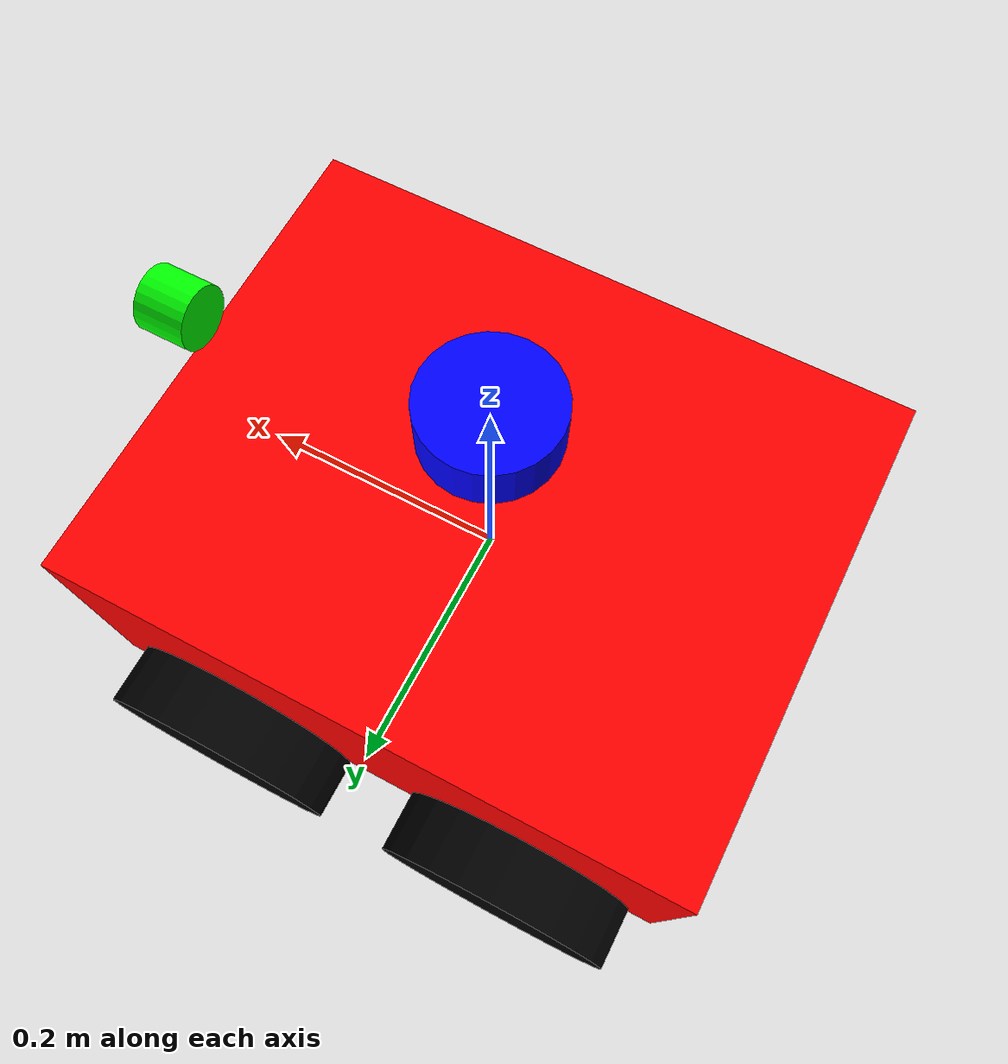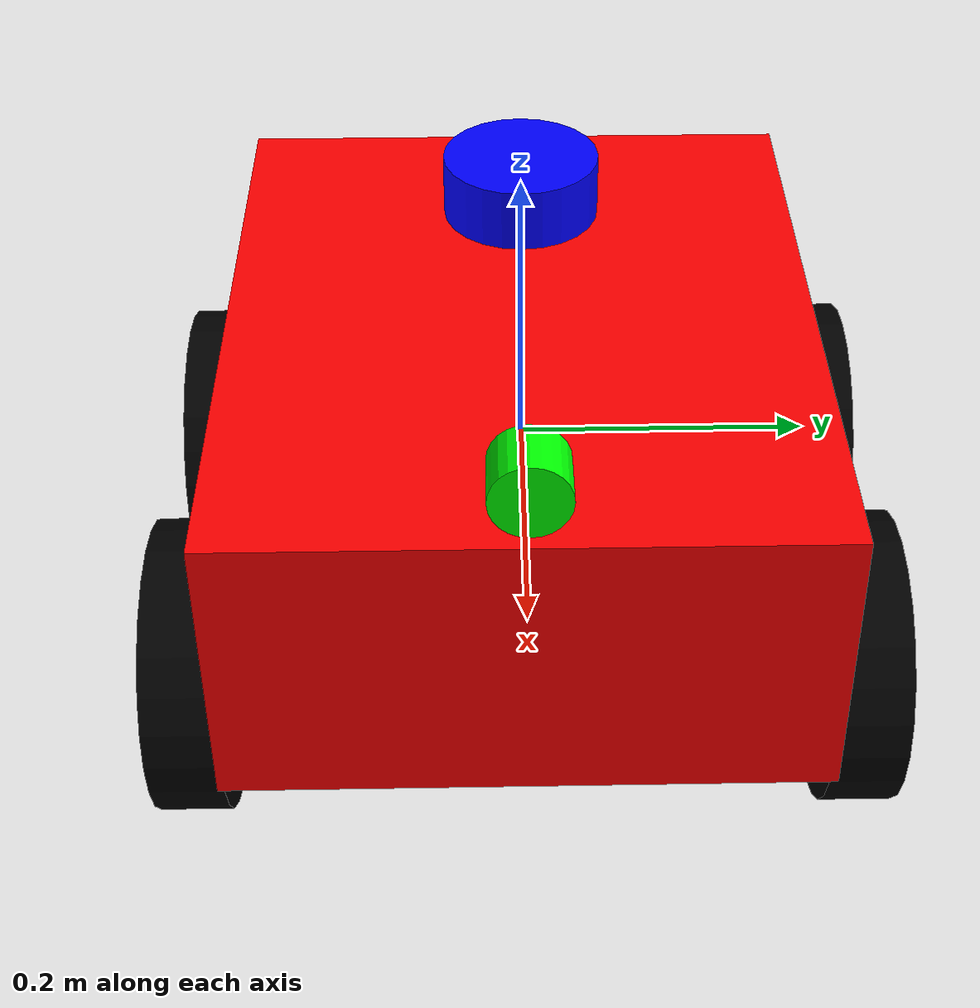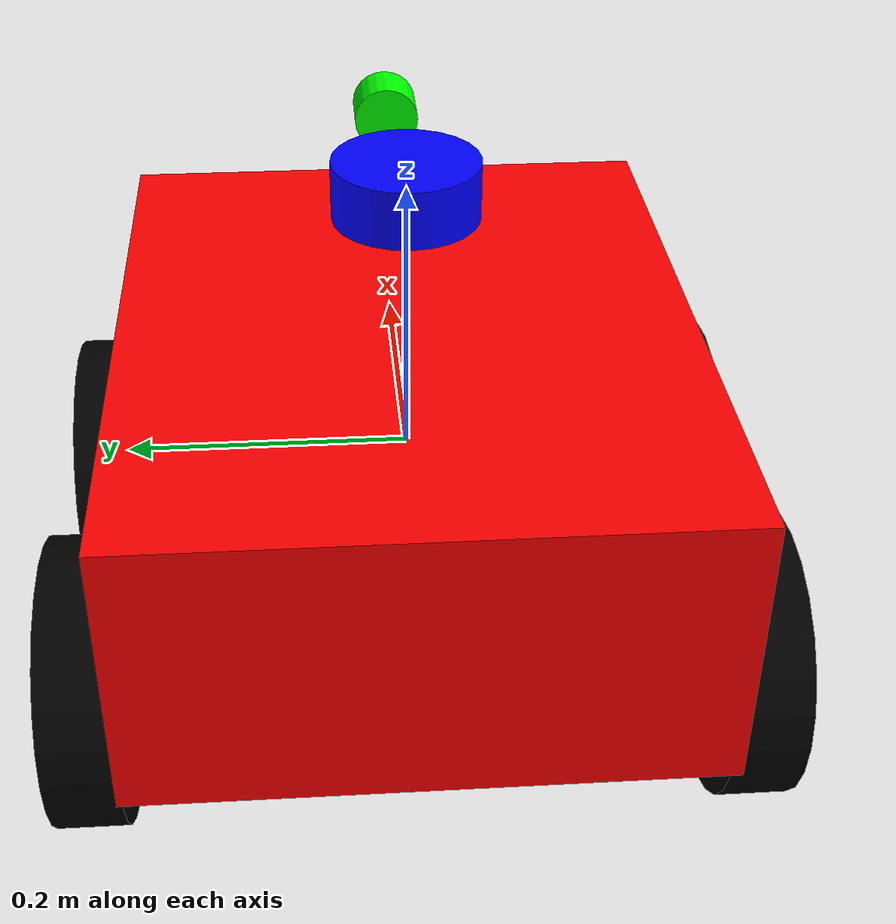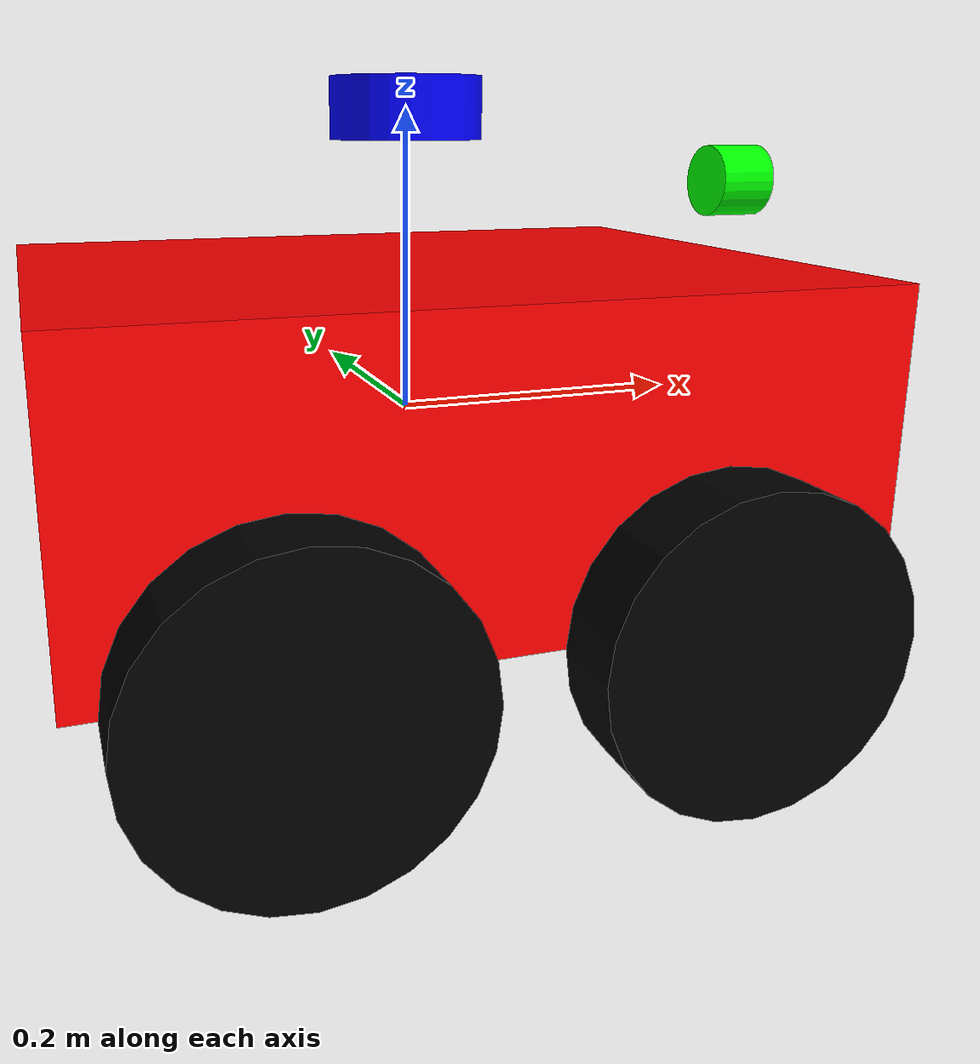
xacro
<?xml version="1.0"?>
<robot name="fbot" xmlns:xacro="http://www.ros.org/wiki/xacro">

    <xacro:arg name="controllers_file" default=""/>

    <xacro:include filename="materials.xacro"/>
    <xacro:include filename="base.xacro"/>
    <xacro:include filename="wheels.xacro"/>
    <xacro:include filename="sensors.xacro"/>
    <xacro:include filename="ros2_control.xacro"/>
    <xacro:include filename="gazebo.xacro"/>

    <xacro:gazebo controllers_file="$(arg controllers_file)"/>

    <xacro:base_link/>

    <xacro:camera parent_link="base_link"/>

    <xacro:lidar parent_link="base_link"/>

    <xacro:wheel wheel_name="front_left_wheel_link" wheel_joint="front_left_wheel_joint" x="0.13" y="0.225"/>

    <xacro:wheel wheel_name="rear_left_wheel_link" wheel_joint="rear_left_wheel_joint" x="-0.13" y="0.225"/>

    <xacro:wheel wheel_name="front_right_wheel_link" wheel_joint="front_right_wheel_joint" x="0.13" y="-0.225"/>

    <xacro:wheel wheel_name="rear_right_wheel_link" wheel_joint="rear_right_wheel_joint" x="-0.13" y="-0.225"/>

    <xacro:ros2_control/>

</robot>

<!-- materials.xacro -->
<robot xmlns:xacro="http://www.ros.org/wiki/xacro">

    <material name="red">
        <color rgba="1 0 0 1"/>
    </material>

    <material name="green">
        <color rgba="0 1 0 1"/>
    </material>

    <material name="blue">
        <color rgba="0 0 1 1"/>
    </material>

    <material name="black">
        <color rgba="0 0 0 1"/>
    </material>

</robot>

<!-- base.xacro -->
<robot xmlns:xacro="http://www.ros.org/wiki/xacro">

    <xacro:property name="base_length" value="0.5"/>
    <xacro:property name="base_width" value="0.4"/>
    <xacro:property name="base_height" value="0.2"/>

    <xacro:macro name="base_link">
        <link name="base_link">
            <visual>
                <origin xyz="0 0 0" rpy="0 0 0"/>
                <geometry>
                    <box size="${base_length} ${base_width} ${base_height}"/>
                </geometry>

                <material name="red"/>
            </visual>

            <collision>
                 <origin xyz="0 0 0" rpy="0 0 0"/>
                <geometry>
                    <box size="${base_length} ${base_width} ${base_height}"/>
                </geometry>
            </collision>

            <inertial>
                <origin xyz="0 0 0" rpy="0 0 0"/>
                <mass value="10.0"/>
                <inertia ixx="0.15" iyy="0.20" izz="0.30" ixy="0" ixz="0" iyz="0"/>
            </inertial>

        </link>

    </xacro:macro>

</robot>

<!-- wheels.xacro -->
<robot xmlns:xacro="http://www.ros.org/wiki/xacro">

<xacro:property name="wheel_radius" value="0.1"/>
<xacro:property name="wheel_length" value="0.05"/>

    <xacro:macro name="wheel" params="wheel_name wheel_joint x y">

        <link name="${wheel_name}">
            <visual>
                <origin xyz="0 0 0" rpy="1.5708 0 0"/>
                <geometry>
                    <cylinder radius="${wheel_radius}" length="${wheel_length}"/>
                </geometry>
                <material name="black"/>
            </visual>

            <collision>
                <origin xyz="0 0 0" rpy="1.5708 0 0"/>
                <geometry>
                    <cylinder radius="${wheel_radius}" length="${wheel_length}"/>
                </geometry>
            </collision>

            <inertial>
                <origin xyz="0 0 0" rpy="0 0 0"/>
                <mass value="1.0"/>
                <inertia ixx="0.005" iyy="0.003" izz="0.005" ixy="0" ixz="0" iyz="0"/>
            </inertial>

        </link>

        <joint name="${wheel_joint}" type="continuous">
            <parent link="base_link"/>
            <child link="${wheel_name}"/>
            <origin xyz="${x} ${y} -0.1" rpy="0 0 0"/>
            <axis xyz="0 1 0"/>
        </joint>

    </xacro:macro>

</robot>

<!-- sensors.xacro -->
<robot xmlns:xacro="http://www.ros.org/wiki/xacro">

    <xacro:macro name="camera" params="parent_link">

        <link name="camera_link">

            <visual>
                <geometry>
                    <cylinder radius="0.025" length="0.04"/>
                </geometry>
                <material name="green"/>
            </visual>

            <collision>
                <geometry>
                    <cylinder radius="0.025" length="0.04"/>
                </geometry>
            </collision>

            <inertial>
                <origin xyz="0 0 0"/>
                <mass value="0.25"/>
                <inertia ixx="0.0002" iyy="0.0002" izz="0.0002" ixy="0" ixz="0" iyz="0"/>
            </inertial>

        </link>

        <joint name="camera_joint" type="fixed">

            <parent link="${parent_link}"/>
            <child link="camera_link"/>
            <origin xyz="0.25 0 0.15" rpy="0 1.5708 0"/>

        </joint>

    </xacro:macro>

    <xacro:macro name="lidar" params="parent_link">

        <link name="lidar_link">

            <visual>
                <geometry>
                    <cylinder radius="0.05" length="0.04"/>
                </geometry>
                <material name="blue"/>
            </visual>

            <collision>
                <geometry>
                    <cylinder radius="0.05" length="0.04"/>
                </geometry>
            </collision>

            <inertial>
                <origin xyz="0 0 0"/>
                <mass value="0.5"/>
                <inertia ixx="0.0005" iyy="0.0005" izz="0.0005" ixy="0" ixz="0" iyz="0"/>
            </inertial>

        </link>

        <joint name="lidar_joint" type="fixed">

            <parent link="${parent_link}"/>
            <child link="lidar_link"/>
            <origin xyz="0 0 0.20" rpy="0 0 0"/>

        </joint>

    </xacro:macro>
</robot>
